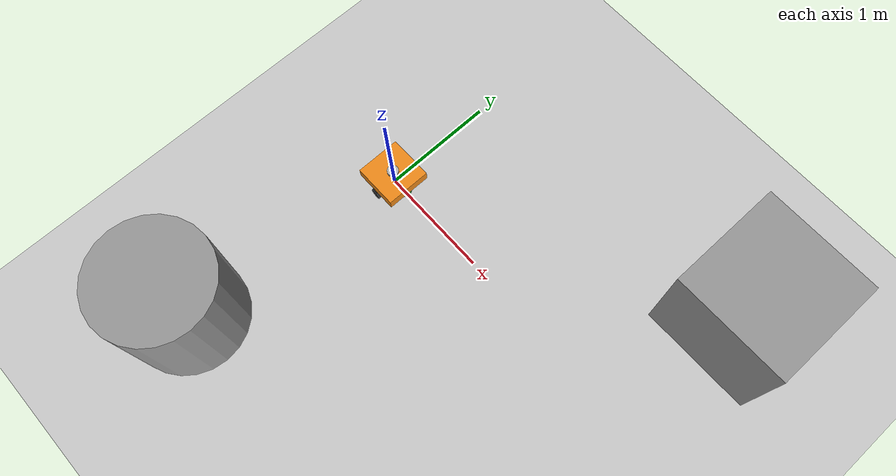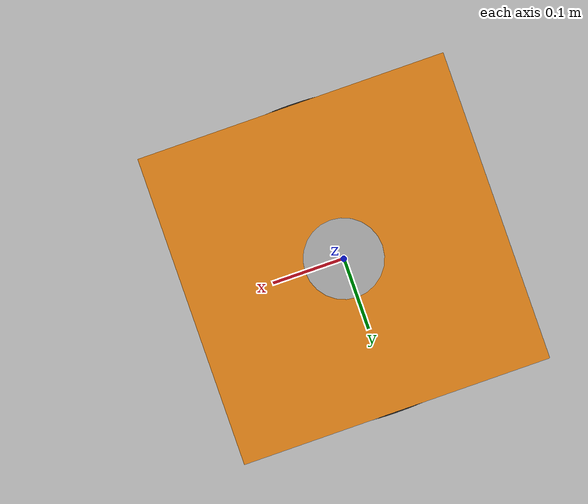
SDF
<sdf version="1.7">
 <world name="default">
  <light name="sun" type="directional">
   <pose>0 0 10 0 -0 0</pose>
   <diffuse>0.8 0.8 0.8 1</diffuse>
   <specular>0.2 0.2 0.2 1</specular>
   <attenuation>
    <range>1000</range>
    <constant>0.9</constant>
    <linear>0.01</linear>
    <quadratic>0.001</quadratic>
   </attenuation>
   <direction>-0.5 0.1 -0.9</direction>
   <spot><inner_angle>0</inner_angle><outer_angle>0</outer_angle><falloff>0</falloff></spot>
  </light>
  <model name="ground_plane">
   <static>1</static>
   <link name="link">
    <collision name="collision">
     <geometry><plane><normal>0 0 1</normal><size>100 100</size></plane></geometry>
     <surface>
      <contact><collide_bitmask>65535</collide_bitmask></contact>
      <friction><ode><mu>100</mu><mu2>50</mu2></ode></friction>
     </surface>
    </collision>
    <visual name="visual">
     <cast_shadows>0</cast_shadows>
     <geometry><plane><normal>0 0 1</normal><size>100 100</size></plane></geometry>
     <material>
      <script><uri>file://media/materials/scripts/gazebo.material</uri><name>Gazebo/Grey</name></script>
     </material>
    </visual>
   </link>
  </model>
  <gravity>0 0 -9.8</gravity>
  <magnetic_field>6e-06 2.3e-05 -4.2e-05</magnetic_field>
  <atmosphere type="adiabatic"/>
  <physics type="ode">
   <max_step_size>0.001</max_step_size>
   <real_time_factor>1</real_time_factor>
   <real_time_update_rate>1000</real_time_update_rate>
  </physics>
  <scene><ambient>0.4 0.4 0.4 1</ambient><background>0.7 0.7 0.7 1</background><shadows>1</shadows></scene>
  <audio><device>default</device></audio>
  <spherical_coordinates>
   <surface_model>EARTH_WGS84</surface_model>
   <latitude_deg>0</latitude_deg>
   <longitude_deg>0</longitude_deg>
   <elevation>0</elevation>
   <heading_deg>0</heading_deg>
  </spherical_coordinates>
  <model name="diffbot_system_position">
   <link name="base_link">
    <inertial>
     <pose>0 0 0.0001 0 -0 0</pose>
     <mass>10.01</mass>
     <inertia>
      <ixx>0.141773</ixx>
      <ixy>0</ixy>
      <ixz>0</ixz>
      <iyy>0.141773</iyy>
      <iyz>0</iyz>
      <izz>0.266676</izz>
     </inertia>
    </inertial>
    <collision name="base_link_fixed_joint_lump__chassis_link_collision">
     <geometry><box><size>0.4 0.4 0.1</size></box></geometry>
    </collision>
    <collision name="base_link_fixed_joint_lump__laser_model_link_collision_1">
     <pose>0 0 0.1 0 -0 0</pose>
     <geometry><cylinder><length>0.05</length><radius>0.05</radius></cylinder></geometry>
    </collision>
    <visual name="base_link_fixed_joint_lump__chassis_link_visual">
     <pose>0 0 0.05 0 -0 0</pose>
     <geometry><box><size>0.4 0.4 0.1</size></box></geometry>
     <material>
      <script><name>Gazebo/Orange</name><uri>file://media/materials/scripts/gazebo.material</uri></script>
     </material>
    </visual>
    <visual name="base_link_fixed_joint_lump__laser_model_link_visual_1">
     <pose>0 0 0.1 0 -0 0</pose>
     <geometry><cylinder><length>0.05</length><radius>0.05</radius></cylinder></geometry>
    </visual>
    <sensor name="sensor_ray" type="ray">
     <ray>
      <scan>
       <horizontal>
        <samples>200</samples>
        <resolution>1</resolution>
        <min_angle>-3.14</min_angle>
        <max_angle>3.14</max_angle>
       </horizontal>
       <vertical><samples>1</samples><min_angle>0</min_angle><max_angle>0</max_angle></vertical>
      </scan>
      <range><min>0.1</min><max>5</max></range>
     </ray>
     <always_on>1</always_on>
     <visualize>1</visualize>
     <update_rate>100</update_rate>
     <plugin name="laser_scan_node" filename="libgazebo_ros_ray_sensor.so">
      <ros><remapping>~/out:=scan</remapping></ros>
      <frame_name>laser_scan_frame</frame_name>
      <output_type>sensor_msgs/LaserScan</output_type>
     </plugin>
     <pose>0 0 0.15 0 -0 0</pose>
    </sensor>
   </link>
   <joint name="caster_frontal_wheel_joint" type="revolute">
    <pose relative_to="base_link">0.15 0 -0.05 0 -0 0</pose>
    <parent>base_link</parent>
    <child>caster_frontal_wheel</child>
    <axis>
     <xyz>1 0 0</xyz>
     <limit><lower>-1e+16</lower><upper>1e+16</upper></limit>
     <dynamics><spring_reference>0</spring_reference><spring_stiffness>0</spring_stiffness></dynamics>
    </axis>
   </joint>
   <link name="caster_frontal_wheel">
    <pose relative_to="caster_frontal_wheel_joint">0 0 0 0 -0 0</pose>
    <inertial>
     <mass>0.1</mass>
     <inertia><ixx>0.0001</ixx><ixy>0</ixy><ixz>0</ixz><iyy>0.0001</iyy><iyz>0</iyz><izz>0.0001</izz></inertia>
    </inertial>
    <collision name="caster_frontal_wheel_collision">
     <geometry><sphere><radius>0.05</radius></sphere></geometry>
     <surface><contact><ode><kp>1e+06</kp><kd>10000</kd></ode></contact></surface>
    </collision>
    <visual name="caster_frontal_wheel_visual">
     <geometry><sphere><radius>0.05</radius></sphere></geometry>
     <material>
      <script><name>Gazebo/Green</name><uri>file://media/materials/scripts/gazebo.material</uri></script>
     </material>
    </visual>
    <friction><ode><mu>0.001</mu><mu2>0.001</mu2></ode></friction>
   </link>
   <joint name="caster_rear_wheel_joint" type="revolute">
    <pose relative_to="base_link">-0.15 0 -0.05 0 -0 0</pose>
    <parent>base_link</parent>
    <child>caster_rear_wheel</child>
    <axis>
     <xyz>1 0 0</xyz>
     <limit><lower>-1e+16</lower><upper>1e+16</upper></limit>
     <dynamics><spring_reference>0</spring_reference><spring_stiffness>0</spring_stiffness></dynamics>
    </axis>
   </joint>
   <link name="caster_rear_wheel">
    <pose relative_to="caster_rear_wheel_joint">0 0 0 0 -0 0</pose>
    <inertial>
     <mass>0.1</mass>
     <inertia><ixx>0.0001</ixx><ixy>0</ixy><ixz>0</ixz><iyy>0.0001</iyy><iyz>0</iyz><izz>0.0001</izz></inertia>
    </inertial>
    <collision name="caster_rear_wheel_collision">
     <geometry><sphere><radius>0.05</radius></sphere></geometry>
     <surface><contact><ode><kp>1e+06</kp><kd>10000</kd></ode></contact></surface>
    </collision>
    <visual name="caster_rear_wheel_visual">
     <geometry><sphere><radius>0.05</radius></sphere></geometry>
     <material>
      <script><name>Gazebo/White</name><uri>file://media/materials/scripts/gazebo.material</uri></script>
     </material>
    </visual>
    <friction><ode><mu>0.001</mu><mu2>0.001</mu2></ode></friction>
   </link>
   <joint name="left_wheel_joint" type="revolute">
    <pose relative_to="base_link">0 0.2 -0.05 0 -0 0</pose>
    <parent>base_link</parent>
    <child>left_wheel</child>
    <axis>
     <xyz>0 1 0</xyz>
     <limit><effort>100</effort><velocity>1</velocity><lower>-1e+16</lower><upper>1e+16</upper></limit>
     <dynamics>
      <damping>0.05</damping>
      <friction>0</friction>
      <spring_reference>0</spring_reference>
      <spring_stiffness>0</spring_stiffness>
     </dynamics>
    </axis>
   </joint>
   <link name="left_wheel">
    <pose relative_to="left_wheel_joint">0 0 0 0 -0 0</pose>
    <inertial>
     <pose>0 0 0 1.5708 -0 0</pose>
     <mass>0.3</mass>
     <inertia>
      <ixx>0.0001975</ixx>
      <ixy>0</ixy>
      <ixz>0</ixz>
      <iyy>0.0001975</iyy>
      <iyz>0</iyz>
      <izz>0.000375</izz>
     </inertia>
    </inertial>
    <collision name="left_wheel_collision">
     <pose>0 0 0 1.5708 -0 0</pose>
     <geometry><cylinder><length>0.02</length><radius>0.05</radius></cylinder></geometry>
     <surface><contact><ode><kp>1e+06</kp><kd>10000</kd></ode></contact></surface>
    </collision>
    <visual name="left_wheel_visual">
     <pose>0 0 0 1.5708 -0 0</pose>
     <geometry><cylinder><length>0.02</length><radius>0.05</radius></cylinder></geometry>
     <material>
      <script><name>Gazebo/Black</name><uri>file://media/materials/scripts/gazebo.material</uri></script>
     </material>
    </visual>
    <friction><ode><mu>10</mu><mu2>10</mu2></ode></friction>
   </link>
   <joint name="right_wheel_joint" type="revolute">
    <pose relative_to="base_link">0 -0.2 -0.05 0 -0 0</pose>
    <parent>base_link</parent>
    <child>right_wheel</child>
    <axis>
     <xyz>0 1 0</xyz>
     <limit><effort>100</effort><velocity>1</velocity><lower>-1e+16</lower><upper>1e+16</upper></limit>
     <dynamics>
      <damping>0.05</damping>
      <friction>0</friction>
      <spring_reference>0</spring_reference>
      <spring_stiffness>0</spring_stiffness>
     </dynamics>
    </axis>
   </joint>
   <link name="right_wheel">
    <pose relative_to="right_wheel_joint">0 0 0 0 -0 0</pose>
    <inertial>
     <pose>0 0 0 1.5708 -0 0</pose>
     <mass>0.3</mass>
     <inertia>
      <ixx>0.0001975</ixx>
      <ixy>0</ixy>
      <ixz>0</ixz>
      <iyy>0.0001975</iyy>
      <iyz>0</iyz>
      <izz>0.000375</izz>
     </inertia>
    </inertial>
    <collision name="right_wheel_collision">
     <pose>0 0 0 1.5708 -0 0</pose>
     <geometry><cylinder><length>0.02</length><radius>0.05</radius></cylinder></geometry>
     <surface><contact><ode><kp>1e+06</kp><kd>10000</kd></ode></contact></surface>
    </collision>
    <visual name="right_wheel_visual">
     <pose>0 0 0 1.5708 -0 0</pose>
     <geometry><cylinder><length>0.02</length><radius>0.05</radius></cylinder></geometry>
     <material>
      <script><name>Gazebo/Black</name><uri>file://media/materials/scripts/gazebo.material</uri></script>
     </material>
    </visual>
    <friction><ode><mu>10</mu><mu2>10</mu2></ode></friction>
   </link>
   <plugin name="gazebo_ros2_control" filename="libgazebo_ros2_control.so">
    <parameters>/home/mohammadrobot/ros2_ws/install/vmxpi_ros2/share/vmxpi_ros2/config/diffbot_controllers.yaml</parameters>
   </plugin>
   <static>0</static>
   <plugin name="gazebo_joint_state_broadcaster" filename="libgazebo_ros_joint_state_publisher.so">
    <update_rate>10</update_rate>
    <joint_name>caster_frontal_wheel_joint</joint_name>
    <joint_name>caster_rear_wheel_joint</joint_name>
   </plugin>
   <pose>1.1e-05 -2e-06 0.099983 0 -0 2e-06</pose>
  </model>
  <model name="unit_box">
   <pose>2.79441 1.26212 0.499995 -1e-05 -0 0</pose>
   <link name="link">
    <inertial>
     <mass>1</mass>
     <inertia>
      <ixx>0.166667</ixx>
      <ixy>0</ixy>
      <ixz>0</ixz>
      <iyy>0.166667</iyy>
      <iyz>0</iyz>
      <izz>0.166667</izz>
     </inertia>
    </inertial>
    <collision name="collision"><geometry><box><size>1 1 1</size></box></geometry></collision>
    <visual name="visual">
     <geometry><box><size>1 1 1</size></box></geometry>
     <material>
      <script><name>Gazebo/Grey</name><uri>file://media/materials/scripts/gazebo.material</uri></script>
     </material>
    </visual>
   </link>
  </model>
  <model name="unit_cylinder">
   <pose>-0.219915 -2.0121 0.5 -3e-06 -4e-06 -0</pose>
   <link name="link">
    <inertial>
     <mass>1</mass>
     <inertia><ixx>0.145833</ixx><ixy>0</ixy><ixz>0</ixz><iyy>0.145833</iyy><iyz>0</iyz><izz>0.125</izz></inertia>
    </inertial>
    <collision name="collision">
     <geometry><cylinder><radius>0.5</radius><length>1</length></cylinder></geometry>
    </collision>
    <visual name="visual">
     <geometry><cylinder><radius>0.5</radius><length>1</length></cylinder></geometry>
     <material>
      <script><name>Gazebo/Grey</name><uri>file://media/materials/scripts/gazebo.material</uri></script>
     </material>
    </visual>
   </link>
  </model>
 </world>
</sdf>
